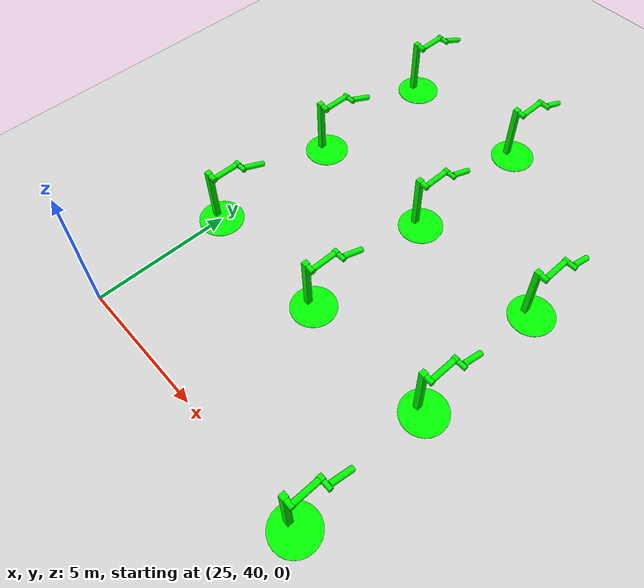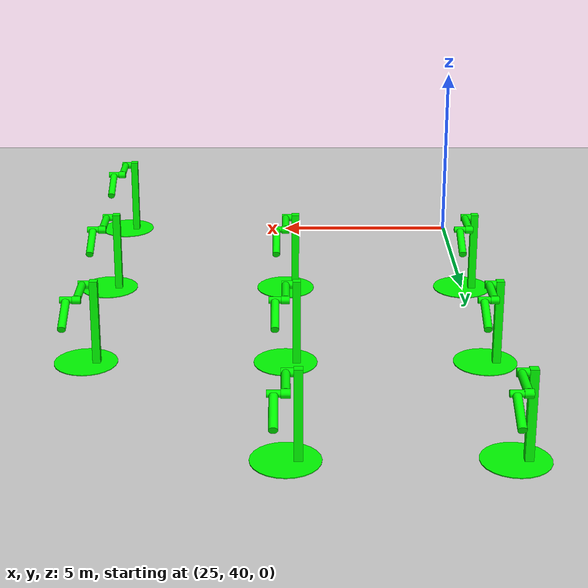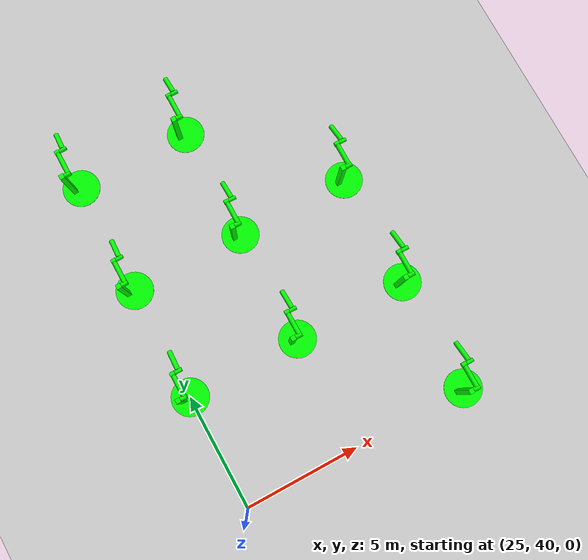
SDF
<sdf version="1.6">
 <world name="double_pendulums">
  <model name="ground_plane">
   <static>true</static>
   <link name="link">
    <collision name="collision">
     <geometry><plane><normal>0 0 1</normal><size>100 100</size></plane></geometry>
    </collision>
    <visual name="visual">
     <geometry><plane><normal>0 0 1</normal><size>100 100</size></plane></geometry>
     <material>
      <ambient>0.8 0.8 0.8 1</ambient>
      <diffuse>0.8 0.8 0.8 1</diffuse>
      <specular>0.8 0.8 0.8 1</specular>
     </material>
    </visual>
   </link>
  </model>
  <model name="dbl_pendulum_217">
   <pose>35 40 0 0 0 0</pose>
   <link name="base">
    <inertial><mass>100</mass></inertial>
    <visual name="vis_plate_on_ground">
     <pose>0 0 0.01 0 0 0</pose>
     <geometry><cylinder><radius>0.8</radius><length>0.02</length></cylinder></geometry>
     <material><ambient>0 1 0 1</ambient><diffuse>0 1 0 1</diffuse><specular>0 1 0 1</specular></material>
    </visual>
    <visual name="vis_pole">
     <pose>-0.275 0 1.1 0 0 0</pose>
     <geometry><box><size>0.2 0.2 2.2</size></box></geometry>
     <material><ambient>0 1 0 1</ambient><diffuse>0 1 0 1</diffuse><specular>0 1 0 1</specular></material>
    </visual>
    <collision name="col_plate_on_ground">
     <pose>0 0 0.01 0 0 0</pose>
     <geometry><cylinder><radius>0.8</radius><length>0.02</length></cylinder></geometry>
    </collision>
    <collision name="col_pole">
     <pose>-0.275 0 1.1 0 0 0</pose>
     <geometry><box><size>0.2 0.2 2.2</size></box></geometry>
    </collision>
   </link>
   <link name="upper_link">
    <pose>0 0 2.1 -1.5708 0 0</pose>
    <inertial><pose>0 0 0.5 0 0 0</pose></inertial>
    <visual name="vis_upper_joint">
     <pose>-0.05 0 0 0 1.5708 0</pose>
     <geometry><cylinder><radius>0.1</radius><length>0.3</length></cylinder></geometry>
     <material><ambient>0 1 0 1</ambient><diffuse>0 1 0 1</diffuse><specular>0 1 0 1</specular></material>
    </visual>
    <visual name="vis_lower_joint">
     <pose>0 0 1.0 0 1.5708 0</pose>
     <geometry><cylinder><radius>0.1</radius><length>0.2</length></cylinder></geometry>
     <material><ambient>0 1 0 1</ambient><diffuse>0 1 0 1</diffuse><specular>0 1 0 1</specular></material>
    </visual>
    <visual name="vis_cylinder">
     <pose>0 0 0.5 0 0 0</pose>
     <geometry><cylinder><radius>0.1</radius><length>0.9</length></cylinder></geometry>
     <material><ambient>0 1 0 1</ambient><diffuse>0 1 0 1</diffuse><specular>0 1 0 1</specular></material>
    </visual>
    <collision name="col_upper_joint">
     <pose>-0.05 0 0 0 1.5708 0</pose>
     <geometry><cylinder><radius>0.1</radius><length>0.3</length></cylinder></geometry>
    </collision>
    <collision name="col_lower_joint">
     <pose>0 0 1.0 0 1.5708 0</pose>
     <geometry><cylinder><radius>0.1</radius><length>0.2</length></cylinder></geometry>
    </collision>
    <collision name="col_cylinder">
     <pose>0 0 0.5 0 0 0</pose>
     <geometry><cylinder><radius>0.1</radius><length>0.9</length></cylinder></geometry>
    </collision>
   </link>
   <link name="lower_link">
    <pose>0.25 1.0 2.1 -2 0 0</pose>
    <inertial><pose>0 0 0.5 0 0 0</pose></inertial>
    <visual name="vis_lower_joint">
     <pose>0 0 0 0 1.5708 0</pose>
     <geometry><cylinder><radius>0.08</radius><length>0.3</length></cylinder></geometry>
     <material><ambient>0 1 0 1</ambient><diffuse>0 1 0 1</diffuse><specular>0 1 0 1</specular></material>
    </visual>
    <visual name="vis_cylinder">
     <pose>0 0 0.5 0 0 0</pose>
     <geometry><cylinder><radius>0.1</radius><length>0.9</length></cylinder></geometry>
     <material><ambient>0 1 0 1</ambient><diffuse>0 1 0 1</diffuse><specular>0 1 0 1</specular></material>
    </visual>
    <collision name="col_lower_joint">
     <pose>0 0 0 0 1.5708 0</pose>
     <geometry><cylinder><radius>0.08</radius><length>0.3</length></cylinder></geometry>
    </collision>
    <collision name="col_cylinder">
     <pose>0 0 0.5 0 0 0</pose>
     <geometry><cylinder><radius>0.1</radius><length>0.9</length></cylinder></geometry>
    </collision>
   </link>
   <joint name="upper_joint" type="revolute">
    <parent>base</parent>
    <child>upper_link</child>
    <axis><xyz>1.0 0 0</xyz></axis>
   </joint>
   <joint name="lower_joint" type="revolute">
    <parent>upper_link</parent>
    <child>lower_link</child>
    <axis><xyz>1.0 0 0</xyz></axis>
   </joint>
  </model>
  <model name="dbl_pendulum_240">
   <pose>25 45 0 0 0 0</pose>
   <link name="base">
    <inertial><mass>100</mass></inertial>
    <visual name="vis_plate_on_ground">
     <pose>0 0 0.01 0 0 0</pose>
     <geometry><cylinder><radius>0.8</radius><length>0.02</length></cylinder></geometry>
     <material><ambient>0 1 0 1</ambient><diffuse>0 1 0 1</diffuse><specular>0 1 0 1</specular></material>
    </visual>
    <visual name="vis_pole">
     <pose>-0.275 0 1.1 0 0 0</pose>
     <geometry><box><size>0.2 0.2 2.2</size></box></geometry>
     <material><ambient>0 1 0 1</ambient><diffuse>0 1 0 1</diffuse><specular>0 1 0 1</specular></material>
    </visual>
    <collision name="col_plate_on_ground">
     <pose>0 0 0.01 0 0 0</pose>
     <geometry><cylinder><radius>0.8</radius><length>0.02</length></cylinder></geometry>
    </collision>
    <collision name="col_pole">
     <pose>-0.275 0 1.1 0 0 0</pose>
     <geometry><box><size>0.2 0.2 2.2</size></box></geometry>
    </collision>
   </link>
   <link name="upper_link">
    <pose>0 0 2.1 -1.5708 0 0</pose>
    <inertial><pose>0 0 0.5 0 0 0</pose></inertial>
    <visual name="vis_upper_joint">
     <pose>-0.05 0 0 0 1.5708 0</pose>
     <geometry><cylinder><radius>0.1</radius><length>0.3</length></cylinder></geometry>
     <material><ambient>0 1 0 1</ambient><diffuse>0 1 0 1</diffuse><specular>0 1 0 1</specular></material>
    </visual>
    <visual name="vis_lower_joint">
     <pose>0 0 1.0 0 1.5708 0</pose>
     <geometry><cylinder><radius>0.1</radius><length>0.2</length></cylinder></geometry>
     <material><ambient>0 1 0 1</ambient><diffuse>0 1 0 1</diffuse><specular>0 1 0 1</specular></material>
    </visual>
    <visual name="vis_cylinder">
     <pose>0 0 0.5 0 0 0</pose>
     <geometry><cylinder><radius>0.1</radius><length>0.9</length></cylinder></geometry>
     <material><ambient>0 1 0 1</ambient><diffuse>0 1 0 1</diffuse><specular>0 1 0 1</specular></material>
    </visual>
    <collision name="col_upper_joint">
     <pose>-0.05 0 0 0 1.5708 0</pose>
     <geometry><cylinder><radius>0.1</radius><length>0.3</length></cylinder></geometry>
    </collision>
    <collision name="col_lower_joint">
     <pose>0 0 1.0 0 1.5708 0</pose>
     <geometry><cylinder><radius>0.1</radius><length>0.2</length></cylinder></geometry>
    </collision>
    <collision name="col_cylinder">
     <pose>0 0 0.5 0 0 0</pose>
     <geometry><cylinder><radius>0.1</radius><length>0.9</length></cylinder></geometry>
    </collision>
   </link>
   <link name="lower_link">
    <pose>0.25 1.0 2.1 -2 0 0</pose>
    <inertial><pose>0 0 0.5 0 0 0</pose></inertial>
    <visual name="vis_lower_joint">
     <pose>0 0 0 0 1.5708 0</pose>
     <geometry><cylinder><radius>0.08</radius><length>0.3</length></cylinder></geometry>
     <material><ambient>0 1 0 1</ambient><diffuse>0 1 0 1</diffuse><specular>0 1 0 1</specular></material>
    </visual>
    <visual name="vis_cylinder">
     <pose>0 0 0.5 0 0 0</pose>
     <geometry><cylinder><radius>0.1</radius><length>0.9</length></cylinder></geometry>
     <material><ambient>0 1 0 1</ambient><diffuse>0 1 0 1</diffuse><specular>0 1 0 1</specular></material>
    </visual>
    <collision name="col_lower_joint">
     <pose>0 0 0 0 1.5708 0</pose>
     <geometry><cylinder><radius>0.08</radius><length>0.3</length></cylinder></geometry>
    </collision>
    <collision name="col_cylinder">
     <pose>0 0 0.5 0 0 0</pose>
     <geometry><cylinder><radius>0.1</radius><length>0.9</length></cylinder></geometry>
    </collision>
   </link>
   <joint name="upper_joint" type="revolute">
    <parent>base</parent>
    <child>upper_link</child>
    <axis><xyz>1.0 0 0</xyz></axis>
   </joint>
   <joint name="lower_joint" type="revolute">
    <parent>upper_link</parent>
    <child>lower_link</child>
    <axis><xyz>1.0 0 0</xyz></axis>
   </joint>
  </model>
  <model name="dbl_pendulum_241">
   <pose>30 45 0 0 0 0</pose>
   <link name="base">
    <inertial><mass>100</mass></inertial>
    <visual name="vis_plate_on_ground">
     <pose>0 0 0.01 0 0 0</pose>
     <geometry><cylinder><radius>0.8</radius><length>0.02</length></cylinder></geometry>
     <material><ambient>0 1 0 1</ambient><diffuse>0 1 0 1</diffuse><specular>0 1 0 1</specular></material>
    </visual>
    <visual name="vis_pole">
     <pose>-0.275 0 1.1 0 0 0</pose>
     <geometry><box><size>0.2 0.2 2.2</size></box></geometry>
     <material><ambient>0 1 0 1</ambient><diffuse>0 1 0 1</diffuse><specular>0 1 0 1</specular></material>
    </visual>
    <collision name="col_plate_on_ground">
     <pose>0 0 0.01 0 0 0</pose>
     <geometry><cylinder><radius>0.8</radius><length>0.02</length></cylinder></geometry>
    </collision>
    <collision name="col_pole">
     <pose>-0.275 0 1.1 0 0 0</pose>
     <geometry><box><size>0.2 0.2 2.2</size></box></geometry>
    </collision>
   </link>
   <link name="upper_link">
    <pose>0 0 2.1 -1.5708 0 0</pose>
    <inertial><pose>0 0 0.5 0 0 0</pose></inertial>
    <visual name="vis_upper_joint">
     <pose>-0.05 0 0 0 1.5708 0</pose>
     <geometry><cylinder><radius>0.1</radius><length>0.3</length></cylinder></geometry>
     <material><ambient>0 1 0 1</ambient><diffuse>0 1 0 1</diffuse><specular>0 1 0 1</specular></material>
    </visual>
    <visual name="vis_lower_joint">
     <pose>0 0 1.0 0 1.5708 0</pose>
     <geometry><cylinder><radius>0.1</radius><length>0.2</length></cylinder></geometry>
     <material><ambient>0 1 0 1</ambient><diffuse>0 1 0 1</diffuse><specular>0 1 0 1</specular></material>
    </visual>
    <visual name="vis_cylinder">
     <pose>0 0 0.5 0 0 0</pose>
     <geometry><cylinder><radius>0.1</radius><length>0.9</length></cylinder></geometry>
     <material><ambient>0 1 0 1</ambient><diffuse>0 1 0 1</diffuse><specular>0 1 0 1</specular></material>
    </visual>
    <collision name="col_upper_joint">
     <pose>-0.05 0 0 0 1.5708 0</pose>
     <geometry><cylinder><radius>0.1</radius><length>0.3</length></cylinder></geometry>
    </collision>
    <collision name="col_lower_joint">
     <pose>0 0 1.0 0 1.5708 0</pose>
     <geometry><cylinder><radius>0.1</radius><length>0.2</length></cylinder></geometry>
    </collision>
    <collision name="col_cylinder">
     <pose>0 0 0.5 0 0 0</pose>
     <geometry><cylinder><radius>0.1</radius><length>0.9</length></cylinder></geometry>
    </collision>
   </link>
   <link name="lower_link">
    <pose>0.25 1.0 2.1 -2 0 0</pose>
    <inertial><pose>0 0 0.5 0 0 0</pose></inertial>
    <visual name="vis_lower_joint">
     <pose>0 0 0 0 1.5708 0</pose>
     <geometry><cylinder><radius>0.08</radius><length>0.3</length></cylinder></geometry>
     <material><ambient>0 1 0 1</ambient><diffuse>0 1 0 1</diffuse><specular>0 1 0 1</specular></material>
    </visual>
    <visual name="vis_cylinder">
     <pose>0 0 0.5 0 0 0</pose>
     <geometry><cylinder><radius>0.1</radius><length>0.9</length></cylinder></geometry>
     <material><ambient>0 1 0 1</ambient><diffuse>0 1 0 1</diffuse><specular>0 1 0 1</specular></material>
    </visual>
    <collision name="col_lower_joint">
     <pose>0 0 0 0 1.5708 0</pose>
     <geometry><cylinder><radius>0.08</radius><length>0.3</length></cylinder></geometry>
    </collision>
    <collision name="col_cylinder">
     <pose>0 0 0.5 0 0 0</pose>
     <geometry><cylinder><radius>0.1</radius><length>0.9</length></cylinder></geometry>
    </collision>
   </link>
   <joint name="upper_joint" type="revolute">
    <parent>base</parent>
    <child>upper_link</child>
    <axis><xyz>1.0 0 0</xyz></axis>
   </joint>
   <joint name="lower_joint" type="revolute">
    <parent>upper_link</parent>
    <child>lower_link</child>
    <axis><xyz>1.0 0 0</xyz></axis>
   </joint>
  </model>
  <model name="dbl_pendulum_242">
   <pose>35 45 0 0 0 0</pose>
   <link name="base">
    <inertial><mass>100</mass></inertial>
    <visual name="vis_plate_on_ground">
     <pose>0 0 0.01 0 0 0</pose>
     <geometry><cylinder><radius>0.8</radius><length>0.02</length></cylinder></geometry>
     <material><ambient>0 1 0 1</ambient><diffuse>0 1 0 1</diffuse><specular>0 1 0 1</specular></material>
    </visual>
    <visual name="vis_pole">
     <pose>-0.275 0 1.1 0 0 0</pose>
     <geometry><box><size>0.2 0.2 2.2</size></box></geometry>
     <material><ambient>0 1 0 1</ambient><diffuse>0 1 0 1</diffuse><specular>0 1 0 1</specular></material>
    </visual>
    <collision name="col_plate_on_ground">
     <pose>0 0 0.01 0 0 0</pose>
     <geometry><cylinder><radius>0.8</radius><length>0.02</length></cylinder></geometry>
    </collision>
    <collision name="col_pole">
     <pose>-0.275 0 1.1 0 0 0</pose>
     <geometry><box><size>0.2 0.2 2.2</size></box></geometry>
    </collision>
   </link>
   <link name="upper_link">
    <pose>0 0 2.1 -1.5708 0 0</pose>
    <inertial><pose>0 0 0.5 0 0 0</pose></inertial>
    <visual name="vis_upper_joint">
     <pose>-0.05 0 0 0 1.5708 0</pose>
     <geometry><cylinder><radius>0.1</radius><length>0.3</length></cylinder></geometry>
     <material><ambient>0 1 0 1</ambient><diffuse>0 1 0 1</diffuse><specular>0 1 0 1</specular></material>
    </visual>
    <visual name="vis_lower_joint">
     <pose>0 0 1.0 0 1.5708 0</pose>
     <geometry><cylinder><radius>0.1</radius><length>0.2</length></cylinder></geometry>
     <material><ambient>0 1 0 1</ambient><diffuse>0 1 0 1</diffuse><specular>0 1 0 1</specular></material>
    </visual>
    <visual name="vis_cylinder">
     <pose>0 0 0.5 0 0 0</pose>
     <geometry><cylinder><radius>0.1</radius><length>0.9</length></cylinder></geometry>
     <material><ambient>0 1 0 1</ambient><diffuse>0 1 0 1</diffuse><specular>0 1 0 1</specular></material>
    </visual>
    <collision name="col_upper_joint">
     <pose>-0.05 0 0 0 1.5708 0</pose>
     <geometry><cylinder><radius>0.1</radius><length>0.3</length></cylinder></geometry>
    </collision>
    <collision name="col_lower_joint">
     <pose>0 0 1.0 0 1.5708 0</pose>
     <geometry><cylinder><radius>0.1</radius><length>0.2</length></cylinder></geometry>
    </collision>
    <collision name="col_cylinder">
     <pose>0 0 0.5 0 0 0</pose>
     <geometry><cylinder><radius>0.1</radius><length>0.9</length></cylinder></geometry>
    </collision>
   </link>
   <link name="lower_link">
    <pose>0.25 1.0 2.1 -2 0 0</pose>
    <inertial><pose>0 0 0.5 0 0 0</pose></inertial>
    <visual name="vis_lower_joint">
     <pose>0 0 0 0 1.5708 0</pose>
     <geometry><cylinder><radius>0.08</radius><length>0.3</length></cylinder></geometry>
     <material><ambient>0 1 0 1</ambient><diffuse>0 1 0 1</diffuse><specular>0 1 0 1</specular></material>
    </visual>
    <visual name="vis_cylinder">
     <pose>0 0 0.5 0 0 0</pose>
     <geometry><cylinder><radius>0.1</radius><length>0.9</length></cylinder></geometry>
     <material><ambient>0 1 0 1</ambient><diffuse>0 1 0 1</diffuse><specular>0 1 0 1</specular></material>
    </visual>
    <collision name="col_lower_joint">
     <pose>0 0 0 0 1.5708 0</pose>
     <geometry><cylinder><radius>0.08</radius><length>0.3</length></cylinder></geometry>
    </collision>
    <collision name="col_cylinder">
     <pose>0 0 0.5 0 0 0</pose>
     <geometry><cylinder><radius>0.1</radius><length>0.9</length></cylinder></geometry>
    </collision>
   </link>
   <joint name="upper_joint" type="revolute">
    <parent>base</parent>
    <child>upper_link</child>
    <axis><xyz>1.0 0 0</xyz></axis>
   </joint>
   <joint name="lower_joint" type="revolute">
    <parent>upper_link</parent>
    <child>lower_link</child>
    <axis><xyz>1.0 0 0</xyz></axis>
   </joint>
  </model>
  <model name="dbl_pendulum_265">
   <pose>25 50 0 0 0 0</pose>
   <link name="base">
    <inertial><mass>100</mass></inertial>
    <visual name="vis_plate_on_ground">
     <pose>0 0 0.01 0 0 0</pose>
     <geometry><cylinder><radius>0.8</radius><length>0.02</length></cylinder></geometry>
     <material><ambient>0 1 0 1</ambient><diffuse>0 1 0 1</diffuse><specular>0 1 0 1</specular></material>
    </visual>
    <visual name="vis_pole">
     <pose>-0.275 0 1.1 0 0 0</pose>
     <geometry><box><size>0.2 0.2 2.2</size></box></geometry>
     <material><ambient>0 1 0 1</ambient><diffuse>0 1 0 1</diffuse><specular>0 1 0 1</specular></material>
    </visual>
    <collision name="col_plate_on_ground">
     <pose>0 0 0.01 0 0 0</pose>
     <geometry><cylinder><radius>0.8</radius><length>0.02</length></cylinder></geometry>
    </collision>
    <collision name="col_pole">
     <pose>-0.275 0 1.1 0 0 0</pose>
     <geometry><box><size>0.2 0.2 2.2</size></box></geometry>
    </collision>
   </link>
   <link name="upper_link">
    <pose>0 0 2.1 -1.5708 0 0</pose>
    <inertial><pose>0 0 0.5 0 0 0</pose></inertial>
    <visual name="vis_upper_joint">
     <pose>-0.05 0 0 0 1.5708 0</pose>
     <geometry><cylinder><radius>0.1</radius><length>0.3</length></cylinder></geometry>
     <material><ambient>0 1 0 1</ambient><diffuse>0 1 0 1</diffuse><specular>0 1 0 1</specular></material>
    </visual>
    <visual name="vis_lower_joint">
     <pose>0 0 1.0 0 1.5708 0</pose>
     <geometry><cylinder><radius>0.1</radius><length>0.2</length></cylinder></geometry>
     <material><ambient>0 1 0 1</ambient><diffuse>0 1 0 1</diffuse><specular>0 1 0 1</specular></material>
    </visual>
    <visual name="vis_cylinder">
     <pose>0 0 0.5 0 0 0</pose>
     <geometry><cylinder><radius>0.1</radius><length>0.9</length></cylinder></geometry>
     <material><ambient>0 1 0 1</ambient><diffuse>0 1 0 1</diffuse><specular>0 1 0 1</specular></material>
    </visual>
    <collision name="col_upper_joint">
     <pose>-0.05 0 0 0 1.5708 0</pose>
     <geometry><cylinder><radius>0.1</radius><length>0.3</length></cylinder></geometry>
    </collision>
    <collision name="col_lower_joint">
     <pose>0 0 1.0 0 1.5708 0</pose>
     <geometry><cylinder><radius>0.1</radius><length>0.2</length></cylinder></geometry>
    </collision>
    <collision name="col_cylinder">
     <pose>0 0 0.5 0 0 0</pose>
     <geometry><cylinder><radius>0.1</radius><length>0.9</length></cylinder></geometry>
    </collision>
   </link>
   <link name="lower_link">
    <pose>0.25 1.0 2.1 -2 0 0</pose>
    <inertial><pose>0 0 0.5 0 0 0</pose></inertial>
    <visual name="vis_lower_joint">
     <pose>0 0 0 0 1.5708 0</pose>
     <geometry><cylinder><radius>0.08</radius><length>0.3</length></cylinder></geometry>
     <material><ambient>0 1 0 1</ambient><diffuse>0 1 0 1</diffuse><specular>0 1 0 1</specular></material>
    </visual>
    <visual name="vis_cylinder">
     <pose>0 0 0.5 0 0 0</pose>
     <geometry><cylinder><radius>0.1</radius><length>0.9</length></cylinder></geometry>
     <material><ambient>0 1 0 1</ambient><diffuse>0 1 0 1</diffuse><specular>0 1 0 1</specular></material>
    </visual>
    <collision name="col_lower_joint">
     <pose>0 0 0 0 1.5708 0</pose>
     <geometry><cylinder><radius>0.08</radius><length>0.3</length></cylinder></geometry>
    </collision>
    <collision name="col_cylinder">
     <pose>0 0 0.5 0 0 0</pose>
     <geometry><cylinder><radius>0.1</radius><length>0.9</length></cylinder></geometry>
    </collision>
   </link>
   <joint name="upper_joint" type="revolute">
    <parent>base</parent>
    <child>upper_link</child>
    <axis><xyz>1.0 0 0</xyz></axis>
   </joint>
   <joint name="lower_joint" type="revolute">
    <parent>upper_link</parent>
    <child>lower_link</child>
    <axis><xyz>1.0 0 0</xyz></axis>
   </joint>
  </model>
  <model name="dbl_pendulum_266">
   <pose>30 50 0 0 0 0</pose>
   <link name="base">
    <inertial><mass>100</mass></inertial>
    <visual name="vis_plate_on_ground">
     <pose>0 0 0.01 0 0 0</pose>
     <geometry><cylinder><radius>0.8</radius><length>0.02</length></cylinder></geometry>
     <material><ambient>0 1 0 1</ambient><diffuse>0 1 0 1</diffuse><specular>0 1 0 1</specular></material>
    </visual>
    <visual name="vis_pole">
     <pose>-0.275 0 1.1 0 0 0</pose>
     <geometry><box><size>0.2 0.2 2.2</size></box></geometry>
     <material><ambient>0 1 0 1</ambient><diffuse>0 1 0 1</diffuse><specular>0 1 0 1</specular></material>
    </visual>
    <collision name="col_plate_on_ground">
     <pose>0 0 0.01 0 0 0</pose>
     <geometry><cylinder><radius>0.8</radius><length>0.02</length></cylinder></geometry>
    </collision>
    <collision name="col_pole">
     <pose>-0.275 0 1.1 0 0 0</pose>
     <geometry><box><size>0.2 0.2 2.2</size></box></geometry>
    </collision>
   </link>
   <link name="upper_link">
    <pose>0 0 2.1 -1.5708 0 0</pose>
    <inertial><pose>0 0 0.5 0 0 0</pose></inertial>
    <visual name="vis_upper_joint">
     <pose>-0.05 0 0 0 1.5708 0</pose>
     <geometry><cylinder><radius>0.1</radius><length>0.3</length></cylinder></geometry>
     <material><ambient>0 1 0 1</ambient><diffuse>0 1 0 1</diffuse><specular>0 1 0 1</specular></material>
    </visual>
    <visual name="vis_lower_joint">
     <pose>0 0 1.0 0 1.5708 0</pose>
     <geometry><cylinder><radius>0.1</radius><length>0.2</length></cylinder></geometry>
     <material><ambient>0 1 0 1</ambient><diffuse>0 1 0 1</diffuse><specular>0 1 0 1</specular></material>
    </visual>
    <visual name="vis_cylinder">
     <pose>0 0 0.5 0 0 0</pose>
     <geometry><cylinder><radius>0.1</radius><length>0.9</length></cylinder></geometry>
     <material><ambient>0 1 0 1</ambient><diffuse>0 1 0 1</diffuse><specular>0 1 0 1</specular></material>
    </visual>
    <collision name="col_upper_joint">
     <pose>-0.05 0 0 0 1.5708 0</pose>
     <geometry><cylinder><radius>0.1</radius><length>0.3</length></cylinder></geometry>
    </collision>
    <collision name="col_lower_joint">
     <pose>0 0 1.0 0 1.5708 0</pose>
     <geometry><cylinder><radius>0.1</radius><length>0.2</length></cylinder></geometry>
    </collision>
    <collision name="col_cylinder">
     <pose>0 0 0.5 0 0 0</pose>
     <geometry><cylinder><radius>0.1</radius><length>0.9</length></cylinder></geometry>
    </collision>
   </link>
   <link name="lower_link">
    <pose>0.25 1.0 2.1 -2 0 0</pose>
    <inertial><pose>0 0 0.5 0 0 0</pose></inertial>
    <visual name="vis_lower_joint">
     <pose>0 0 0 0 1.5708 0</pose>
     <geometry><cylinder><radius>0.08</radius><length>0.3</length></cylinder></geometry>
     <material><ambient>0 1 0 1</ambient><diffuse>0 1 0 1</diffuse><specular>0 1 0 1</specular></material>
    </visual>
    <visual name="vis_cylinder">
     <pose>0 0 0.5 0 0 0</pose>
     <geometry><cylinder><radius>0.1</radius><length>0.9</length></cylinder></geometry>
     <material><ambient>0 1 0 1</ambient><diffuse>0 1 0 1</diffuse><specular>0 1 0 1</specular></material>
    </visual>
    <collision name="col_lower_joint">
     <pose>0 0 0 0 1.5708 0</pose>
     <geometry><cylinder><radius>0.08</radius><length>0.3</length></cylinder></geometry>
    </collision>
    <collision name="col_cylinder">
     <pose>0 0 0.5 0 0 0</pose>
     <geometry><cylinder><radius>0.1</radius><length>0.9</length></cylinder></geometry>
    </collision>
   </link>
   <joint name="upper_joint" type="revolute">
    <parent>base</parent>
    <child>upper_link</child>
    <axis><xyz>1.0 0 0</xyz></axis>
   </joint>
   <joint name="lower_joint" type="revolute">
    <parent>upper_link</parent>
    <child>lower_link</child>
    <axis><xyz>1.0 0 0</xyz></axis>
   </joint>
  </model>
  <model name="dbl_pendulum_267">
   <pose>35 50 0 0 0 0</pose>
   <link name="base">
    <inertial><mass>100</mass></inertial>
    <visual name="vis_plate_on_ground">
     <pose>0 0 0.01 0 0 0</pose>
     <geometry><cylinder><radius>0.8</radius><length>0.02</length></cylinder></geometry>
     <material><ambient>0 1 0 1</ambient><diffuse>0 1 0 1</diffuse><specular>0 1 0 1</specular></material>
    </visual>
    <visual name="vis_pole">
     <pose>-0.275 0 1.1 0 0 0</pose>
     <geometry><box><size>0.2 0.2 2.2</size></box></geometry>
     <material><ambient>0 1 0 1</ambient><diffuse>0 1 0 1</diffuse><specular>0 1 0 1</specular></material>
    </visual>
    <collision name="col_plate_on_ground">
     <pose>0 0 0.01 0 0 0</pose>
     <geometry><cylinder><radius>0.8</radius><length>0.02</length></cylinder></geometry>
    </collision>
    <collision name="col_pole">
     <pose>-0.275 0 1.1 0 0 0</pose>
     <geometry><box><size>0.2 0.2 2.2</size></box></geometry>
    </collision>
   </link>
   <link name="upper_link">
    <pose>0 0 2.1 -1.5708 0 0</pose>
    <inertial><pose>0 0 0.5 0 0 0</pose></inertial>
    <visual name="vis_upper_joint">
     <pose>-0.05 0 0 0 1.5708 0</pose>
     <geometry><cylinder><radius>0.1</radius><length>0.3</length></cylinder></geometry>
     <material><ambient>0 1 0 1</ambient><diffuse>0 1 0 1</diffuse><specular>0 1 0 1</specular></material>
    </visual>
    <visual name="vis_lower_joint">
     <pose>0 0 1.0 0 1.5708 0</pose>
     <geometry><cylinder><radius>0.1</radius><length>0.2</length></cylinder></geometry>
     <material><ambient>0 1 0 1</ambient><diffuse>0 1 0 1</diffuse><specular>0 1 0 1</specular></material>
    </visual>
    <visual name="vis_cylinder">
     <pose>0 0 0.5 0 0 0</pose>
     <geometry><cylinder><radius>0.1</radius><length>0.9</length></cylinder></geometry>
     <material><ambient>0 1 0 1</ambient><diffuse>0 1 0 1</diffuse><specular>0 1 0 1</specular></material>
    </visual>
    <collision name="col_upper_joint">
     <pose>-0.05 0 0 0 1.5708 0</pose>
     <geometry><cylinder><radius>0.1</radius><length>0.3</length></cylinder></geometry>
    </collision>
    <collision name="col_lower_joint">
     <pose>0 0 1.0 0 1.5708 0</pose>
     <geometry><cylinder><radius>0.1</radius><length>0.2</length></cylinder></geometry>
    </collision>
    <collision name="col_cylinder">
     <pose>0 0 0.5 0 0 0</pose>
     <geometry><cylinder><radius>0.1</radius><length>0.9</length></cylinder></geometry>
    </collision>
   </link>
   <link name="lower_link">
    <pose>0.25 1.0 2.1 -2 0 0</pose>
    <inertial><pose>0 0 0.5 0 0 0</pose></inertial>
    <visual name="vis_lower_joint">
     <pose>0 0 0 0 1.5708 0</pose>
     <geometry><cylinder><radius>0.08</radius><length>0.3</length></cylinder></geometry>
     <material><ambient>0 1 0 1</ambient><diffuse>0 1 0 1</diffuse><specular>0 1 0 1</specular></material>
    </visual>
    <visual name="vis_cylinder">
     <pose>0 0 0.5 0 0 0</pose>
     <geometry><cylinder><radius>0.1</radius><length>0.9</length></cylinder></geometry>
     <material><ambient>0 1 0 1</ambient><diffuse>0 1 0 1</diffuse><specular>0 1 0 1</specular></material>
    </visual>
    <collision name="col_lower_joint">
     <pose>0 0 0 0 1.5708 0</pose>
     <geometry><cylinder><radius>0.08</radius><length>0.3</length></cylinder></geometry>
    </collision>
    <collision name="col_cylinder">
     <pose>0 0 0.5 0 0 0</pose>
     <geometry><cylinder><radius>0.1</radius><length>0.9</length></cylinder></geometry>
    </collision>
   </link>
   <joint name="upper_joint" type="revolute">
    <parent>base</parent>
    <child>upper_link</child>
    <axis><xyz>1.0 0 0</xyz></axis>
   </joint>
   <joint name="lower_joint" type="revolute">
    <parent>upper_link</parent>
    <child>lower_link</child>
    <axis><xyz>1.0 0 0</xyz></axis>
   </joint>
  </model>
  <model name="dbl_pendulum_290">
   <pose>25 55 0 0 0 0</pose>
   <link name="base">
    <inertial><mass>100</mass></inertial>
    <visual name="vis_plate_on_ground">
     <pose>0 0 0.01 0 0 0</pose>
     <geometry><cylinder><radius>0.8</radius><length>0.02</length></cylinder></geometry>
     <material><ambient>0 1 0 1</ambient><diffuse>0 1 0 1</diffuse><specular>0 1 0 1</specular></material>
    </visual>
    <visual name="vis_pole">
     <pose>-0.275 0 1.1 0 0 0</pose>
     <geometry><box><size>0.2 0.2 2.2</size></box></geometry>
     <material><ambient>0 1 0 1</ambient><diffuse>0 1 0 1</diffuse><specular>0 1 0 1</specular></material>
    </visual>
    <collision name="col_plate_on_ground">
     <pose>0 0 0.01 0 0 0</pose>
     <geometry><cylinder><radius>0.8</radius><length>0.02</length></cylinder></geometry>
    </collision>
    <collision name="col_pole">
     <pose>-0.275 0 1.1 0 0 0</pose>
     <geometry><box><size>0.2 0.2 2.2</size></box></geometry>
    </collision>
   </link>
   <link name="upper_link">
    <pose>0 0 2.1 -1.5708 0 0</pose>
    <inertial><pose>0 0 0.5 0 0 0</pose></inertial>
    <visual name="vis_upper_joint">
     <pose>-0.05 0 0 0 1.5708 0</pose>
     <geometry><cylinder><radius>0.1</radius><length>0.3</length></cylinder></geometry>
     <material><ambient>0 1 0 1</ambient><diffuse>0 1 0 1</diffuse><specular>0 1 0 1</specular></material>
    </visual>
    <visual name="vis_lower_joint">
     <pose>0 0 1.0 0 1.5708 0</pose>
     <geometry><cylinder><radius>0.1</radius><length>0.2</length></cylinder></geometry>
     <material><ambient>0 1 0 1</ambient><diffuse>0 1 0 1</diffuse><specular>0 1 0 1</specular></material>
    </visual>
    <visual name="vis_cylinder">
     <pose>0 0 0.5 0 0 0</pose>
     <geometry><cylinder><radius>0.1</radius><length>0.9</length></cylinder></geometry>
     <material><ambient>0 1 0 1</ambient><diffuse>0 1 0 1</diffuse><specular>0 1 0 1</specular></material>
    </visual>
    <collision name="col_upper_joint">
     <pose>-0.05 0 0 0 1.5708 0</pose>
     <geometry><cylinder><radius>0.1</radius><length>0.3</length></cylinder></geometry>
    </collision>
    <collision name="col_lower_joint">
     <pose>0 0 1.0 0 1.5708 0</pose>
     <geometry><cylinder><radius>0.1</radius><length>0.2</length></cylinder></geometry>
    </collision>
    <collision name="col_cylinder">
     <pose>0 0 0.5 0 0 0</pose>
     <geometry><cylinder><radius>0.1</radius><length>0.9</length></cylinder></geometry>
    </collision>
   </link>
   <link name="lower_link">
    <pose>0.25 1.0 2.1 -2 0 0</pose>
    <inertial><pose>0 0 0.5 0 0 0</pose></inertial>
    <visual name="vis_lower_joint">
     <pose>0 0 0 0 1.5708 0</pose>
     <geometry><cylinder><radius>0.08</radius><length>0.3</length></cylinder></geometry>
     <material><ambient>0 1 0 1</ambient><diffuse>0 1 0 1</diffuse><specular>0 1 0 1</specular></material>
    </visual>
    <visual name="vis_cylinder">
     <pose>0 0 0.5 0 0 0</pose>
     <geometry><cylinder><radius>0.1</radius><length>0.9</length></cylinder></geometry>
     <material><ambient>0 1 0 1</ambient><diffuse>0 1 0 1</diffuse><specular>0 1 0 1</specular></material>
    </visual>
    <collision name="col_lower_joint">
     <pose>0 0 0 0 1.5708 0</pose>
     <geometry><cylinder><radius>0.08</radius><length>0.3</length></cylinder></geometry>
    </collision>
    <collision name="col_cylinder">
     <pose>0 0 0.5 0 0 0</pose>
     <geometry><cylinder><radius>0.1</radius><length>0.9</length></cylinder></geometry>
    </collision>
   </link>
   <joint name="upper_joint" type="revolute">
    <parent>base</parent>
    <child>upper_link</child>
    <axis><xyz>1.0 0 0</xyz></axis>
   </joint>
   <joint name="lower_joint" type="revolute">
    <parent>upper_link</parent>
    <child>lower_link</child>
    <axis><xyz>1.0 0 0</xyz></axis>
   </joint>
  </model>
  <model name="dbl_pendulum_291">
   <pose>30 55 0 0 0 0</pose>
   <link name="base">
    <inertial><mass>100</mass></inertial>
    <visual name="vis_plate_on_ground">
     <pose>0 0 0.01 0 0 0</pose>
     <geometry><cylinder><radius>0.8</radius><length>0.02</length></cylinder></geometry>
     <material><ambient>0 1 0 1</ambient><diffuse>0 1 0 1</diffuse><specular>0 1 0 1</specular></material>
    </visual>
    <visual name="vis_pole">
     <pose>-0.275 0 1.1 0 0 0</pose>
     <geometry><box><size>0.2 0.2 2.2</size></box></geometry>
     <material><ambient>0 1 0 1</ambient><diffuse>0 1 0 1</diffuse><specular>0 1 0 1</specular></material>
    </visual>
    <collision name="col_plate_on_ground">
     <pose>0 0 0.01 0 0 0</pose>
     <geometry><cylinder><radius>0.8</radius><length>0.02</length></cylinder></geometry>
    </collision>
    <collision name="col_pole">
     <pose>-0.275 0 1.1 0 0 0</pose>
     <geometry><box><size>0.2 0.2 2.2</size></box></geometry>
    </collision>
   </link>
   <link name="upper_link">
    <pose>0 0 2.1 -1.5708 0 0</pose>
    <inertial><pose>0 0 0.5 0 0 0</pose></inertial>
    <visual name="vis_upper_joint">
     <pose>-0.05 0 0 0 1.5708 0</pose>
     <geometry><cylinder><radius>0.1</radius><length>0.3</length></cylinder></geometry>
     <material><ambient>0 1 0 1</ambient><diffuse>0 1 0 1</diffuse><specular>0 1 0 1</specular></material>
    </visual>
    <visual name="vis_lower_joint">
     <pose>0 0 1.0 0 1.5708 0</pose>
     <geometry><cylinder><radius>0.1</radius><length>0.2</length></cylinder></geometry>
     <material><ambient>0 1 0 1</ambient><diffuse>0 1 0 1</diffuse><specular>0 1 0 1</specular></material>
    </visual>
    <visual name="vis_cylinder">
     <pose>0 0 0.5 0 0 0</pose>
     <geometry><cylinder><radius>0.1</radius><length>0.9</length></cylinder></geometry>
     <material><ambient>0 1 0 1</ambient><diffuse>0 1 0 1</diffuse><specular>0 1 0 1</specular></material>
    </visual>
    <collision name="col_upper_joint">
     <pose>-0.05 0 0 0 1.5708 0</pose>
     <geometry><cylinder><radius>0.1</radius><length>0.3</length></cylinder></geometry>
    </collision>
    <collision name="col_lower_joint">
     <pose>0 0 1.0 0 1.5708 0</pose>
     <geometry><cylinder><radius>0.1</radius><length>0.2</length></cylinder></geometry>
    </collision>
    <collision name="col_cylinder">
     <pose>0 0 0.5 0 0 0</pose>
     <geometry><cylinder><radius>0.1</radius><length>0.9</length></cylinder></geometry>
    </collision>
   </link>
   <link name="lower_link">
    <pose>0.25 1.0 2.1 -2 0 0</pose>
    <inertial><pose>0 0 0.5 0 0 0</pose></inertial>
    <visual name="vis_lower_joint">
     <pose>0 0 0 0 1.5708 0</pose>
     <geometry><cylinder><radius>0.08</radius><length>0.3</length></cylinder></geometry>
     <material><ambient>0 1 0 1</ambient><diffuse>0 1 0 1</diffuse><specular>0 1 0 1</specular></material>
    </visual>
    <visual name="vis_cylinder">
     <pose>0 0 0.5 0 0 0</pose>
     <geometry><cylinder><radius>0.1</radius><length>0.9</length></cylinder></geometry>
     <material><ambient>0 1 0 1</ambient><diffuse>0 1 0 1</diffuse><specular>0 1 0 1</specular></material>
    </visual>
    <collision name="col_lower_joint">
     <pose>0 0 0 0 1.5708 0</pose>
     <geometry><cylinder><radius>0.08</radius><length>0.3</length></cylinder></geometry>
    </collision>
    <collision name="col_cylinder">
     <pose>0 0 0.5 0 0 0</pose>
     <geometry><cylinder><radius>0.1</radius><length>0.9</length></cylinder></geometry>
    </collision>
   </link>
   <joint name="upper_joint" type="revolute">
    <parent>base</parent>
    <child>upper_link</child>
    <axis><xyz>1.0 0 0</xyz></axis>
   </joint>
   <joint name="lower_joint" type="revolute">
    <parent>upper_link</parent>
    <child>lower_link</child>
    <axis><xyz>1.0 0 0</xyz></axis>
   </joint>
  </model>
 </world>
</sdf>
